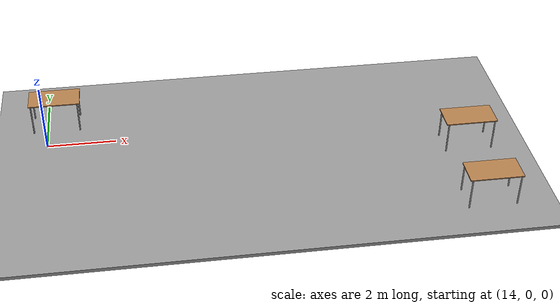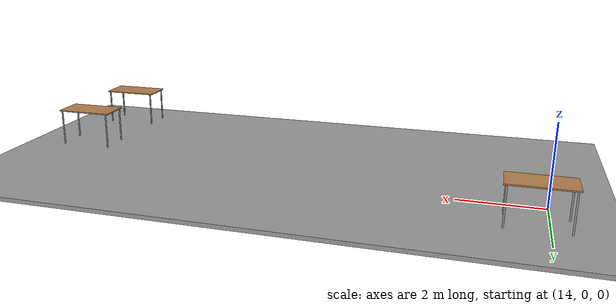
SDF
<sdf version="1.6">
 <world name="default">
  <model name="ground_plane">
   <static>1</static>
   <link name="link">
    <collision name="collision">
     <geometry><plane><normal>0 0 1</normal><size>100 100</size></plane></geometry>
     <surface><friction><ode><mu>100</mu><mu2>50</mu2></ode></friction></surface>
    </collision>
    <visual name="visual">
     <cast_shadows>0</cast_shadows>
     <geometry><plane><normal>0 0 1</normal><size>100 100</size></plane></geometry>
     <material>
      <script><uri>file://media/materials/scripts/gazebo.material</uri><name>Gazebo/Grey</name></script>
     </material>
    </visual>
   </link>
  </model>
  <model name="ground_plane_0">
   <static>1</static>
   <link name="link">
    <collision name="collision">
     <geometry><plane><normal>0 0 1</normal><size>100 100</size></plane></geometry>
     <surface><friction><ode><mu>100</mu><mu2>50</mu2></ode></friction></surface>
    </collision>
    <visual name="visual">
     <cast_shadows>0</cast_shadows>
     <geometry><plane><normal>0 0 1</normal><size>100 100</size></plane></geometry>
     <material>
      <script><uri>file://media/materials/scripts/gazebo.material</uri><name>Gazebo/Grey</name></script>
     </material>
    </visual>
   </link>
   <pose>14.9212 -1.71168 0 0 -0 0</pose>
  </model>
  <model name="table_clone_0">
   <static>1</static>
   <link name="link">
    <collision name="surface">
     <pose>0 0 1 0 -0 0</pose>
     <geometry><box><size>1.5 0.8 0.03</size></box></geometry>
     <surface><friction><ode><mu>0.6</mu><mu2>0.6</mu2></ode></friction></surface>
    </collision>
    <visual name="visual1">
     <pose>0 0 1 0 -0 0</pose>
     <geometry><box><size>1.5 0.8 0.03</size></box></geometry>
     <material>
      <script><uri>file://media/materials/scripts/gazebo.material</uri><name>Gazebo/Wood</name></script>
     </material>
    </visual>
    <collision name="front_left_leg">
     <pose>0.68 0.38 0.5 0 -0 0</pose>
     <geometry><cylinder><radius>0.02</radius><length>1</length></cylinder></geometry>
    </collision>
    <visual name="front_left_leg">
     <pose>0.68 0.38 0.5 0 -0 0</pose>
     <geometry><cylinder><radius>0.02</radius><length>1</length></cylinder></geometry>
     <material>
      <script><uri>file://media/materials/scripts/gazebo.material</uri><name>Gazebo/Grey</name></script>
     </material>
    </visual>
    <collision name="front_right_leg">
     <pose>0.68 -0.38 0.5 0 -0 0</pose>
     <geometry><cylinder><radius>0.02</radius><length>1</length></cylinder></geometry>
    </collision>
    <visual name="front_right_leg">
     <pose>0.68 -0.38 0.5 0 -0 0</pose>
     <geometry><cylinder><radius>0.02</radius><length>1</length></cylinder></geometry>
     <material>
      <script><uri>file://media/materials/scripts/gazebo.material</uri><name>Gazebo/Grey</name></script>
     </material>
    </visual>
    <collision name="back_right_leg">
     <pose>-0.68 -0.38 0.5 0 -0 0</pose>
     <geometry><cylinder><radius>0.02</radius><length>1</length></cylinder></geometry>
    </collision>
    <visual name="back_right_leg">
     <pose>-0.68 -0.38 0.5 0 -0 0</pose>
     <geometry><cylinder><radius>0.02</radius><length>1</length></cylinder></geometry>
     <material>
      <script><uri>file://media/materials/scripts/gazebo.material</uri><name>Gazebo/Grey</name></script>
     </material>
    </visual>
    <collision name="back_left_leg">
     <pose>-0.68 0.38 0.5 0 -0 0</pose>
     <geometry><cylinder><radius>0.02</radius><length>1</length></cylinder></geometry>
    </collision>
    <visual name="back_left_leg">
     <pose>-0.68 0.38 0.5 0 -0 0</pose>
     <geometry><cylinder><radius>0.02</radius><length>1</length></cylinder></geometry>
     <material>
      <script><uri>file://media/materials/scripts/gazebo.material</uri><name>Gazebo/Grey</name></script>
     </material>
    </visual>
   </link>
   <pose>26.2534 -1.46858 0 0 -0 0</pose>
  </model>
  <model name="table_clone_0_clone">
   <static>1</static>
   <link name="link">
    <collision name="surface">
     <pose>0 0 1 0 -0 0</pose>
     <geometry><box><size>1.5 0.8 0.03</size></box></geometry>
     <surface><friction><ode><mu>0.6</mu><mu2>0.6</mu2></ode></friction></surface>
    </collision>
    <visual name="visual1">
     <pose>0 0 1 0 -0 0</pose>
     <geometry><box><size>1.5 0.8 0.03</size></box></geometry>
     <material>
      <script><uri>file://media/materials/scripts/gazebo.material</uri><name>Gazebo/Wood</name></script>
     </material>
    </visual>
    <collision name="front_left_leg">
     <pose>0.68 0.38 0.5 0 -0 0</pose>
     <geometry><cylinder><radius>0.02</radius><length>1</length></cylinder></geometry>
    </collision>
    <visual name="front_left_leg">
     <pose>0.68 0.38 0.5 0 -0 0</pose>
     <geometry><cylinder><radius>0.02</radius><length>1</length></cylinder></geometry>
     <material>
      <script><uri>file://media/materials/scripts/gazebo.material</uri><name>Gazebo/Grey</name></script>
     </material>
    </visual>
    <collision name="front_right_leg">
     <pose>0.68 -0.38 0.5 0 -0 0</pose>
     <geometry><cylinder><radius>0.02</radius><length>1</length></cylinder></geometry>
    </collision>
    <visual name="front_right_leg">
     <pose>0.68 -0.38 0.5 0 -0 0</pose>
     <geometry><cylinder><radius>0.02</radius><length>1</length></cylinder></geometry>
     <material>
      <script><uri>file://media/materials/scripts/gazebo.material</uri><name>Gazebo/Grey</name></script>
     </material>
    </visual>
    <collision name="back_right_leg">
     <pose>-0.68 -0.38 0.5 0 -0 0</pose>
     <geometry><cylinder><radius>0.02</radius><length>1</length></cylinder></geometry>
    </collision>
    <visual name="back_right_leg">
     <pose>-0.68 -0.38 0.5 0 -0 0</pose>
     <geometry><cylinder><radius>0.02</radius><length>1</length></cylinder></geometry>
     <material>
      <script><uri>file://media/materials/scripts/gazebo.material</uri><name>Gazebo/Grey</name></script>
     </material>
    </visual>
    <collision name="back_left_leg">
     <pose>-0.68 0.38 0.5 0 -0 0</pose>
     <geometry><cylinder><radius>0.02</radius><length>1</length></cylinder></geometry>
    </collision>
    <visual name="back_left_leg">
     <pose>-0.68 0.38 0.5 0 -0 0</pose>
     <geometry><cylinder><radius>0.02</radius><length>1</length></cylinder></geometry>
     <material>
      <script><uri>file://media/materials/scripts/gazebo.material</uri><name>Gazebo/Grey</name></script>
     </material>
    </visual>
   </link>
   <pose>26.1826 -4.01135 0 0 -0 0</pose>
  </model>
  <model name="table_clone_0_clone_1_clone_clone">
   <static>1</static>
   <link name="link">
    <collision name="surface">
     <pose>0 0 1 0 -0 0</pose>
     <geometry><box><size>1.5 0.8 0.03</size></box></geometry>
     <surface><friction><ode><mu>0.6</mu><mu2>0.6</mu2></ode></friction></surface>
    </collision>
    <visual name="visual1">
     <pose>0 0 1 0 -0 0</pose>
     <geometry><box><size>1.5 0.8 0.03</size></box></geometry>
     <material>
      <script><uri>file://media/materials/scripts/gazebo.material</uri><name>Gazebo/Wood</name></script>
     </material>
    </visual>
    <collision name="front_left_leg">
     <pose>0.68 0.38 0.5 0 -0 0</pose>
     <geometry><cylinder><radius>0.02</radius><length>1</length></cylinder></geometry>
    </collision>
    <visual name="front_left_leg">
     <pose>0.68 0.38 0.5 0 -0 0</pose>
     <geometry><cylinder><radius>0.02</radius><length>1</length></cylinder></geometry>
     <material>
      <script><uri>file://media/materials/scripts/gazebo.material</uri><name>Gazebo/Grey</name></script>
     </material>
    </visual>
    <collision name="front_right_leg">
     <pose>0.68 -0.38 0.5 0 -0 0</pose>
     <geometry><cylinder><radius>0.02</radius><length>1</length></cylinder></geometry>
    </collision>
    <visual name="front_right_leg">
     <pose>0.68 -0.38 0.5 0 -0 0</pose>
     <geometry><cylinder><radius>0.02</radius><length>1</length></cylinder></geometry>
     <material>
      <script><uri>file://media/materials/scripts/gazebo.material</uri><name>Gazebo/Grey</name></script>
     </material>
    </visual>
    <collision name="back_right_leg">
     <pose>-0.68 -0.38 0.5 0 -0 0</pose>
     <geometry><cylinder><radius>0.02</radius><length>1</length></cylinder></geometry>
    </collision>
    <visual name="back_right_leg">
     <pose>-0.68 -0.38 0.5 0 -0 0</pose>
     <geometry><cylinder><radius>0.02</radius><length>1</length></cylinder></geometry>
     <material>
      <script><uri>file://media/materials/scripts/gazebo.material</uri><name>Gazebo/Grey</name></script>
     </material>
    </visual>
    <collision name="back_left_leg">
     <pose>-0.68 0.38 0.5 0 -0 0</pose>
     <geometry><cylinder><radius>0.02</radius><length>1</length></cylinder></geometry>
    </collision>
    <visual name="back_left_leg">
     <pose>-0.68 0.38 0.5 0 -0 0</pose>
     <geometry><cylinder><radius>0.02</radius><length>1</length></cylinder></geometry>
     <material>
      <script><uri>file://media/materials/scripts/gazebo.material</uri><name>Gazebo/Grey</name></script>
     </material>
    </visual>
   </link>
   <pose>14.272 1.02528 0 0 -0 0</pose>
  </model>
 </world>
</sdf>
